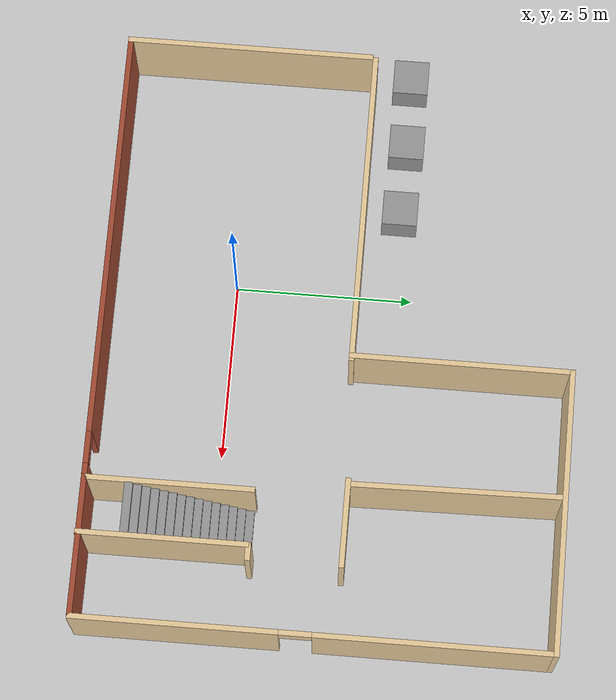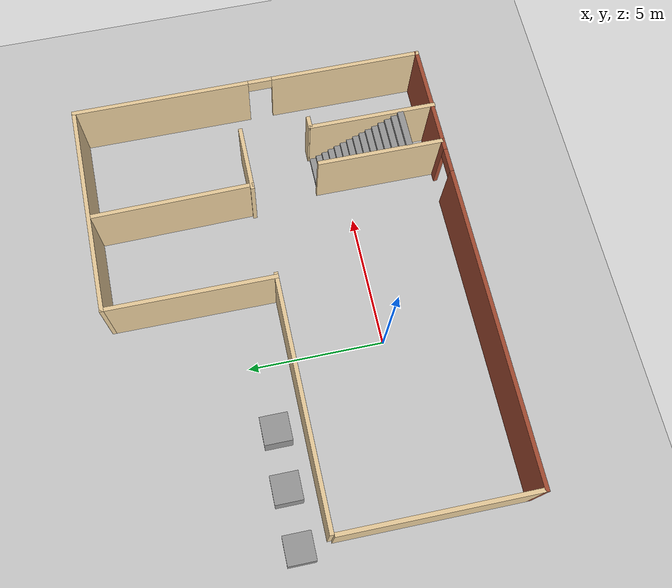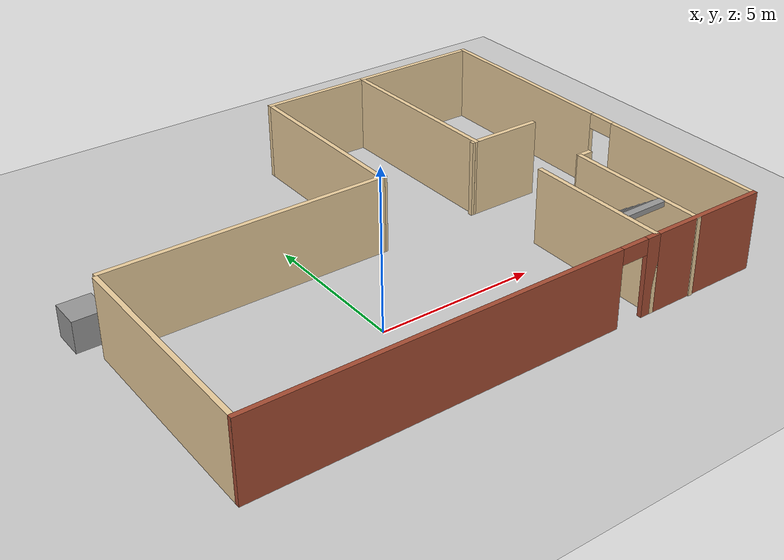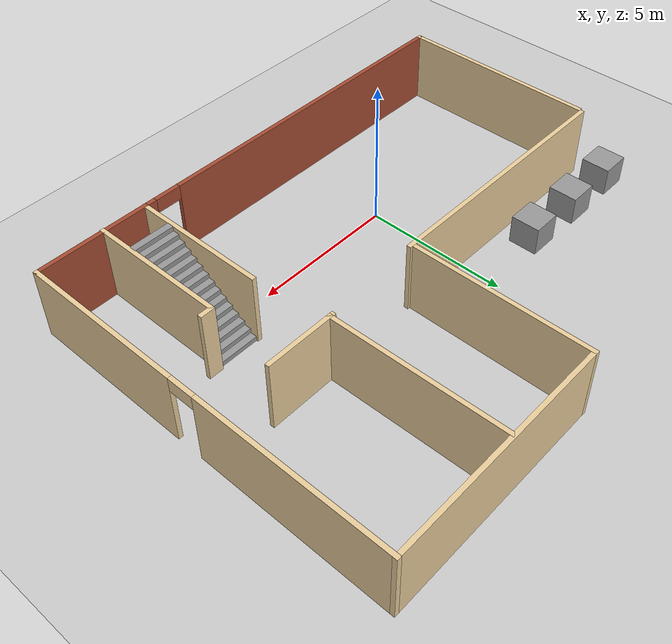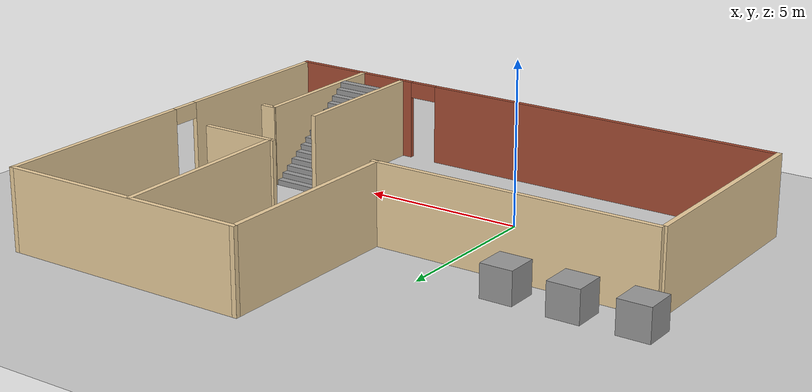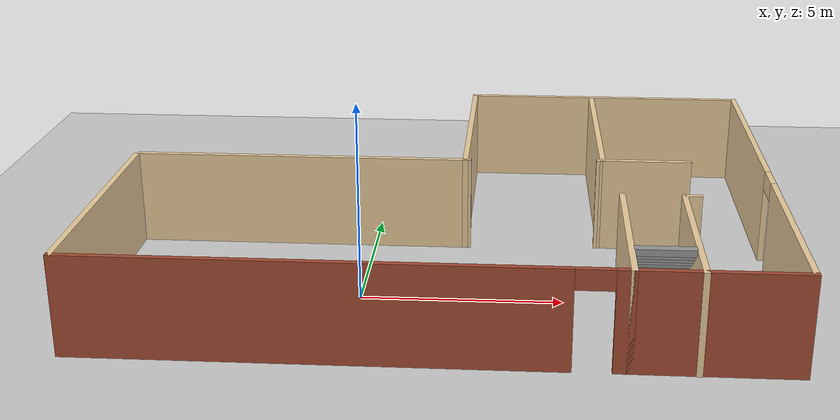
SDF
<sdf version="1.6">
 <world name="default">
  <light name="sun" type="directional">
   <pose>0 0 10 0 -0 0</pose>
   <diffuse>0.8 0.8 0.8 1</diffuse>
   <specular>0.2 0.2 0.2 1</specular>
   <attenuation>
    <range>1000</range>
    <constant>0.9</constant>
    <linear>0.01</linear>
    <quadratic>0.001</quadratic>
   </attenuation>
   <direction>-0.5 0.1 -0.9</direction>
  </light>
  <model name="ground_plane">
   <static>1</static>
   <link name="link">
    <collision name="collision">
     <geometry><plane><normal>0 0 1</normal><size>100 100</size></plane></geometry>
     <surface>
      <contact><collide_bitmask>65535</collide_bitmask></contact>
      <friction><ode><mu>100</mu><mu2>50</mu2></ode></friction>
     </surface>
    </collision>
    <visual name="visual">
     <cast_shadows>0</cast_shadows>
     <geometry><plane><normal>0 0 1</normal><size>100 100</size></plane></geometry>
     <material>
      <script><uri>file://media/materials/scripts/gazebo.material</uri><name>Gazebo/Grey</name></script>
     </material>
    </visual>
   </link>
  </model>
  <gravity>0 0 -9.8</gravity>
  <magnetic_field>6e-06 2.3e-05 -4.2e-05</magnetic_field>
  <atmosphere type="adiabatic"/>
  <physics name="default_physics" default="0" type="ode">
   <max_step_size>0.001</max_step_size>
   <real_time_factor>1</real_time_factor>
   <real_time_update_rate>1000</real_time_update_rate>
  </physics>
  <scene><ambient>0.4 0.4 0.4 1</ambient><background>0.7 0.7 0.7 1</background><shadows>1</shadows></scene>
  <spherical_coordinates>
   <surface_model>EARTH_WGS84</surface_model>
   <latitude_deg>0</latitude_deg>
   <longitude_deg>0</longitude_deg>
   <elevation>0</elevation>
   <heading_deg>0</heading_deg>
  </spherical_coordinates>
  <model name="lounge">
   <pose>1.91507 2.98558 0 0 -0 0</pose>
   <link name="Stairs_0">
    <visual name="Stairs_0_Visual_0">
     <pose>5.26794 -2.03684 0.083333 0 -0 0</pose>
     <geometry><box><size>1.41269 0.233333 0.166667</size></box></geometry>
     <material>
      <script><uri>file://media/materials/scripts/gazebo.material</uri><name>Gazebo/Grey</name></script>
      <ambient>1 1 1 1</ambient>
     </material>
     <meta><layer>0</layer></meta>
    </visual>
    <collision name="Stairs_0_Collision_0">
     <geometry><box><size>1.41269 0.233333 0.166667</size></box></geometry>
     <pose>5.26794 -2.03684 0.083333 0 -0 0</pose>
    </collision>
    <visual name="Stairs_0_Visual_1">
     <pose>5.26794 -2.27017 0.25 0 -0 0</pose>
     <geometry><box><size>1.41269 0.233333 0.166667</size></box></geometry>
     <material>
      <script><uri>file://media/materials/scripts/gazebo.material</uri><name>Gazebo/Grey</name></script>
      <ambient>1 1 1 1</ambient>
     </material>
     <meta><layer>0</layer></meta>
    </visual>
    <collision name="Stairs_0_Collision_1">
     <geometry><box><size>1.41269 0.233333 0.166667</size></box></geometry>
     <pose>5.26794 -2.27017 0.25 0 -0 0</pose>
    </collision>
    <visual name="Stairs_0_Visual_2">
     <pose>5.26794 -2.50351 0.416667 0 -0 0</pose>
     <geometry><box><size>1.41269 0.233333 0.166667</size></box></geometry>
     <material>
      <script><uri>file://media/materials/scripts/gazebo.material</uri><name>Gazebo/Grey</name></script>
      <ambient>1 1 1 1</ambient>
     </material>
     <meta><layer>0</layer></meta>
    </visual>
    <collision name="Stairs_0_Collision_2">
     <geometry><box><size>1.41269 0.233333 0.166667</size></box></geometry>
     <pose>5.26794 -2.50351 0.416667 0 -0 0</pose>
    </collision>
    <visual name="Stairs_0_Visual_3">
     <pose>5.26794 -2.73684 0.583333 0 -0 0</pose>
     <geometry><box><size>1.41269 0.233333 0.166667</size></box></geometry>
     <material>
      <script><uri>file://media/materials/scripts/gazebo.material</uri><name>Gazebo/Grey</name></script>
      <ambient>1 1 1 1</ambient>
     </material>
     <meta><layer>0</layer></meta>
    </visual>
    <collision name="Stairs_0_Collision_3">
     <geometry><box><size>1.41269 0.233333 0.166667</size></box></geometry>
     <pose>5.26794 -2.73684 0.583333 0 -0 0</pose>
    </collision>
    <visual name="Stairs_0_Visual_4">
     <pose>5.26794 -2.97017 0.75 0 -0 0</pose>
     <geometry><box><size>1.41269 0.233333 0.166667</size></box></geometry>
     <material>
      <script><uri>file://media/materials/scripts/gazebo.material</uri><name>Gazebo/Grey</name></script>
      <ambient>1 1 1 1</ambient>
     </material>
     <meta><layer>0</layer></meta>
    </visual>
    <collision name="Stairs_0_Collision_4">
     <geometry><box><size>1.41269 0.233333 0.166667</size></box></geometry>
     <pose>5.26794 -2.97017 0.75 0 -0 0</pose>
    </collision>
    <visual name="Stairs_0_Visual_5">
     <pose>5.26794 -3.2035 0.916667 0 -0 0</pose>
     <geometry><box><size>1.41269 0.233333 0.166667</size></box></geometry>
     <material>
      <script><uri>file://media/materials/scripts/gazebo.material</uri><name>Gazebo/Grey</name></script>
      <ambient>1 1 1 1</ambient>
     </material>
     <meta><layer>0</layer></meta>
    </visual>
    <collision name="Stairs_0_Collision_5">
     <geometry><box><size>1.41269 0.233333 0.166667</size></box></geometry>
     <pose>5.26794 -3.2035 0.916667 0 -0 0</pose>
    </collision>
    <visual name="Stairs_0_Visual_6">
     <pose>5.26794 -3.43684 1.08333 0 -0 0</pose>
     <geometry><box><size>1.41269 0.233333 0.166667</size></box></geometry>
     <material>
      <script><uri>file://media/materials/scripts/gazebo.material</uri><name>Gazebo/Grey</name></script>
      <ambient>1 1 1 1</ambient>
     </material>
     <meta><layer>0</layer></meta>
    </visual>
    <collision name="Stairs_0_Collision_6">
     <geometry><box><size>1.41269 0.233333 0.166667</size></box></geometry>
     <pose>5.26794 -3.43684 1.08333 0 -0 0</pose>
    </collision>
    <visual name="Stairs_0_Visual_7">
     <pose>5.26794 -3.67017 1.25 0 -0 0</pose>
     <geometry><box><size>1.41269 0.233333 0.166667</size></box></geometry>
     <material>
      <script><uri>file://media/materials/scripts/gazebo.material</uri><name>Gazebo/Grey</name></script>
      <ambient>1 1 1 1</ambient>
     </material>
     <meta><layer>0</layer></meta>
    </visual>
    <collision name="Stairs_0_Collision_7">
     <geometry><box><size>1.41269 0.233333 0.166667</size></box></geometry>
     <pose>5.26794 -3.67017 1.25 0 -0 0</pose>
    </collision>
    <visual name="Stairs_0_Visual_8">
     <pose>5.26794 -3.90351 1.41667 0 -0 0</pose>
     <geometry><box><size>1.41269 0.233333 0.166667</size></box></geometry>
     <material>
      <script><uri>file://media/materials/scripts/gazebo.material</uri><name>Gazebo/Grey</name></script>
      <ambient>1 1 1 1</ambient>
     </material>
     <meta><layer>0</layer></meta>
    </visual>
    <collision name="Stairs_0_Collision_8">
     <geometry><box><size>1.41269 0.233333 0.166667</size></box></geometry>
     <pose>5.26794 -3.90351 1.41667 0 -0 0</pose>
    </collision>
    <visual name="Stairs_0_Visual_9">
     <pose>5.26794 -4.13684 1.58333 0 -0 0</pose>
     <geometry><box><size>1.41269 0.233333 0.166667</size></box></geometry>
     <material>
      <script><uri>file://media/materials/scripts/gazebo.material</uri><name>Gazebo/Grey</name></script>
      <ambient>1 1 1 1</ambient>
     </material>
     <meta><layer>0</layer></meta>
    </visual>
    <collision name="Stairs_0_Collision_9">
     <geometry><box><size>1.41269 0.233333 0.166667</size></box></geometry>
     <pose>5.26794 -4.13684 1.58333 0 -0 0</pose>
    </collision>
    <visual name="Stairs_0_Visual_10">
     <pose>5.26794 -4.37017 1.75 0 -0 0</pose>
     <geometry><box><size>1.41269 0.233333 0.166667</size></box></geometry>
     <material>
      <script><uri>file://media/materials/scripts/gazebo.material</uri><name>Gazebo/Grey</name></script>
      <ambient>1 1 1 1</ambient>
     </material>
     <meta><layer>0</layer></meta>
    </visual>
    <collision name="Stairs_0_Collision_10">
     <geometry><box><size>1.41269 0.233333 0.166667</size></box></geometry>
     <pose>5.26794 -4.37017 1.75 0 -0 0</pose>
    </collision>
    <visual name="Stairs_0_Visual_11">
     <pose>5.26794 -4.60351 1.91667 0 -0 0</pose>
     <geometry><box><size>1.41269 0.233333 0.166667</size></box></geometry>
     <material>
      <script><uri>file://media/materials/scripts/gazebo.material</uri><name>Gazebo/Grey</name></script>
      <ambient>1 1 1 1</ambient>
     </material>
     <meta><layer>0</layer></meta>
    </visual>
    <collision name="Stairs_0_Collision_11">
     <geometry><box><size>1.41269 0.233333 0.166667</size></box></geometry>
     <pose>5.26794 -4.60351 1.91667 0 -0 0</pose>
    </collision>
    <visual name="Stairs_0_Visual_12">
     <pose>5.26794 -4.83684 2.08333 0 -0 0</pose>
     <geometry><box><size>1.41269 0.233333 0.166667</size></box></geometry>
     <material>
      <script><uri>file://media/materials/scripts/gazebo.material</uri><name>Gazebo/Grey</name></script>
      <ambient>1 1 1 1</ambient>
     </material>
     <meta><layer>0</layer></meta>
    </visual>
    <collision name="Stairs_0_Collision_12">
     <geometry><box><size>1.41269 0.233333 0.166667</size></box></geometry>
     <pose>5.26794 -4.83684 2.08333 0 -0 0</pose>
    </collision>
    <visual name="Stairs_0_Visual_13">
     <pose>5.26794 -5.07017 2.25 0 -0 0</pose>
     <geometry><box><size>1.41269 0.233333 0.166667</size></box></geometry>
     <material>
      <script><uri>file://media/materials/scripts/gazebo.material</uri><name>Gazebo/Grey</name></script>
      <ambient>1 1 1 1</ambient>
     </material>
     <meta><layer>0</layer></meta>
    </visual>
    <collision name="Stairs_0_Collision_13">
     <geometry><box><size>1.41269 0.233333 0.166667</size></box></geometry>
     <pose>5.26794 -5.07017 2.25 0 -0 0</pose>
    </collision>
    <visual name="Stairs_0_Visual_14">
     <pose>5.26794 -5.30351 2.41667 0 -0 0</pose>
     <geometry><box><size>1.41269 0.233333 0.166667</size></box></geometry>
     <material>
      <script><uri>file://media/materials/scripts/gazebo.material</uri><name>Gazebo/Grey</name></script>
      <ambient>1 1 1 1</ambient>
     </material>
     <meta><layer>0</layer></meta>
    </visual>
    <collision name="Stairs_0_Collision_14">
     <geometry><box><size>1.41269 0.233333 0.166667</size></box></geometry>
     <pose>5.26794 -5.30351 2.41667 0 -0 0</pose>
    </collision>
   </link>
   <link name="Wall_25">
    <collision name="Wall_25_Collision">
     <geometry><box><size>7 0.15 2.5</size></box></geometry>
     <pose>0 0 1.25 0 -0 0</pose>
    </collision>
    <visual name="Wall_25_Visual">
     <pose>0 0 1.25 0 -0 0</pose>
     <geometry><box><size>7 0.15 2.5</size></box></geometry>
     <material>
      <script><uri>file://media/materials/scripts/gazebo.material</uri><name>Gazebo/Grey</name></script>
      <ambient>0.921569 0.807843 0.615686 1</ambient>
     </material>
     <meta><layer>0</layer></meta>
    </visual>
    <pose>-8.35 -3.11051 0 0 0 -1.5708</pose>
   </link>
   <link name="Wall_27">
    <pose>-1.925 -6.53552 0 0 -0 0</pose>
    <visual name="Wall_27_Visual_0">
     <pose>-0.677313 0 1.25 0 -0 0</pose>
     <geometry><box><size>11.6454 0.15 2.5</size></box></geometry>
     <material>
      <script><uri>file://media/materials/scripts/gazebo.material</uri><name>Gazebo/Bricks</name></script>
      <ambient>1 1 1 1</ambient>
     </material>
     <meta><layer>0</layer></meta>
    </visual>
    <collision name="Wall_27_Collision_0">
     <geometry><box><size>11.6454 0.15 2.5</size></box></geometry>
     <pose>-0.677313 0 1.25 0 -0 0</pose>
    </collision>
    <visual name="Wall_27_Visual_1">
     <pose>6.27269 0 1.25 0 -0 0</pose>
     <geometry><box><size>0.454627 0.15 2.5</size></box></geometry>
     <material>
      <script><uri>file://media/materials/scripts/gazebo.material</uri><name>Gazebo/Bricks</name></script>
      <ambient>1 1 1 1</ambient>
     </material>
     <meta><layer>0</layer></meta>
    </visual>
    <collision name="Wall_27_Collision_1">
     <geometry><box><size>0.454627 0.15 2.5</size></box></geometry>
     <pose>6.27269 0 1.25 0 -0 0</pose>
    </collision>
    <visual name="Wall_27_Visual_2">
     <pose>5.59537 0 2.25 0 -0 0</pose>
     <geometry><box><size>0.9 0.15 0.5</size></box></geometry>
     <material>
      <script><uri>file://media/materials/scripts/gazebo.material</uri><name>Gazebo/Bricks</name></script>
      <ambient>1 1 1 1</ambient>
     </material>
     <meta><layer>0</layer></meta>
    </visual>
    <collision name="Wall_27_Collision_2">
     <geometry><box><size>0.9 0.15 0.5</size></box></geometry>
     <pose>5.59537 0 2.25 0 -0 0</pose>
    </collision>
   </link>
   <link name="Wall_28">
    <collision name="Wall_28_Collision">
     <geometry><box><size>4.75 0.15 2.5</size></box></geometry>
     <pose>0 0 1.25 0 -0 0</pose>
    </collision>
    <visual name="Wall_28_Visual">
     <pose>0 0 1.25 0 -0 0</pose>
     <geometry><box><size>4.75 0.15 2.5</size></box></geometry>
     <material>
      <script><uri>file://media/materials/scripts/gazebo.material</uri><name>Gazebo/Grey</name></script>
      <ambient>0.921569 0.807843 0.615686 1</ambient>
     </material>
     <meta><layer>0</layer></meta>
    </visual>
    <pose>4.5 -4.23552 0 0 -0 1.5708</pose>
   </link>
   <link name="Wall_30">
    <collision name="Wall_30_Collision">
     <geometry><box><size>4 0.15 2.5</size></box></geometry>
     <pose>0 0 1.25 0 -0 0</pose>
    </collision>
    <visual name="Wall_30_Visual">
     <pose>0 0 1.25 0 -0 0</pose>
     <geometry><box><size>4 0.15 2.5</size></box></geometry>
     <material>
      <script><uri>file://media/materials/scripts/gazebo.material</uri><name>Gazebo/Bricks</name></script>
      <ambient>1 1 1 1</ambient>
     </material>
     <meta><layer>0</layer></meta>
    </visual>
    <pose>6.425 -6.53552 0 0 -0 0</pose>
   </link>
   <link name="Wall_31">
    <pose>8.35 0.014485 0 0 -0 1.5708</pose>
    <visual name="Wall_31_Visual_0">
     <pose>-3.77058 0 1.25 0 -0 0</pose>
     <geometry><box><size>5.70883 0.15 2.5</size></box></geometry>
     <material>
      <script><uri>file://media/materials/scripts/gazebo.material</uri><name>Gazebo/Grey</name></script>
      <ambient>0.921569 0.807843 0.615686 1</ambient>
     </material>
     <meta><layer>0</layer></meta>
    </visual>
    <collision name="Wall_31_Collision_0">
     <geometry><box><size>5.70883 0.15 2.5</size></box></geometry>
     <pose>-3.77058 0 1.25 0 -0 0</pose>
    </collision>
    <visual name="Wall_31_Visual_1">
     <pose>3.30442 0 1.25 0 -0 0</pose>
     <geometry><box><size>6.64117 0.15 2.5</size></box></geometry>
     <material>
      <script><uri>file://media/materials/scripts/gazebo.material</uri><name>Gazebo/Grey</name></script>
      <ambient>0.921569 0.807843 0.615686 1</ambient>
     </material>
     <meta><layer>0</layer></meta>
    </visual>
    <collision name="Wall_31_Collision_1">
     <geometry><box><size>6.64117 0.15 2.5</size></box></geometry>
     <pose>3.30442 0 1.25 0 -0 0</pose>
    </collision>
    <visual name="Wall_31_Visual_2">
     <pose>-0.466169 0 2.25 0 -0 0</pose>
     <geometry><box><size>0.9 0.15 0.5</size></box></geometry>
     <material>
      <script><uri>file://media/materials/scripts/gazebo.material</uri><name>Gazebo/Grey</name></script>
      <ambient>0.921569 0.807843 0.615686 1</ambient>
     </material>
     <meta><layer>0</layer></meta>
    </visual>
    <collision name="Wall_31_Collision_2">
     <geometry><box><size>0.9 0.15 0.5</size></box></geometry>
     <pose>-0.466169 0 2.25 0 -0 0</pose>
    </collision>
   </link>
   <link name="Wall_32">
    <collision name="Wall_32_Collision">
     <geometry><box><size>8 0.15 2.5</size></box></geometry>
     <pose>0 0 1.25 0 -0 0</pose>
    </collision>
    <visual name="Wall_32_Visual">
     <pose>0 0 1.25 0 -0 0</pose>
     <geometry><box><size>8 0.15 2.5</size></box></geometry>
     <material>
      <script><uri>file://media/materials/scripts/gazebo.material</uri><name>Gazebo/Grey</name></script>
      <ambient>0.921569 0.807843 0.615686 1</ambient>
     </material>
     <meta><layer>0</layer></meta>
    </visual>
    <pose>4.425 6.56449 0 0 -0 3.14159</pose>
   </link>
   <link name="Wall_33">
    <collision name="Wall_33_Collision">
     <geometry><box><size>6.25052 0.15 2.5</size></box></geometry>
     <pose>0 0 1.25 0 -0 0</pose>
    </collision>
    <visual name="Wall_33_Visual">
     <pose>0 0 1.25 0 -0 0</pose>
     <geometry><box><size>6.25052 0.15 2.5</size></box></geometry>
     <material>
      <script><uri>file://media/materials/scripts/gazebo.material</uri><name>Gazebo/Grey</name></script>
      <ambient>0.921569 0.807843 0.615686 1</ambient>
     </material>
     <meta><layer>0</layer></meta>
    </visual>
    <pose>0.5 3.51449 0 0 0 -1.5708</pose>
   </link>
   <link name="Wall_34">
    <collision name="Wall_34_Collision">
     <geometry><box><size>9 0.15 2.5</size></box></geometry>
     <pose>0 0 1.25 0 -0 0</pose>
    </collision>
    <visual name="Wall_34_Visual">
     <pose>0 0 1.25 0 -0 0</pose>
     <geometry><box><size>9 0.15 2.5</size></box></geometry>
     <material>
      <script><uri>file://media/materials/scripts/gazebo.material</uri><name>Gazebo/Grey</name></script>
      <ambient>0.921569 0.807843 0.615686 1</ambient>
     </material>
     <meta><layer>0</layer></meta>
    </visual>
    <pose>-3.845 0.464485 0 0 -0 3.14159</pose>
   </link>
   <link name="Wall_36">
    <collision name="Wall_36_Collision">
     <geometry><box><size>6.02472 0.15 2.5</size></box></geometry>
     <pose>0 0 1.25 0 -0 0</pose>
    </collision>
    <visual name="Wall_36_Visual">
     <pose>0 0 1.25 0 -0 0</pose>
     <geometry><box><size>6.02472 0.15 2.5</size></box></geometry>
     <material>
      <script><uri>file://media/materials/scripts/gazebo.material</uri><name>Gazebo/Grey</name></script>
      <ambient>0.921569 0.807843 0.615686 1</ambient>
     </material>
     <meta><layer>0</layer></meta>
    </visual>
    <pose>4.08753 3.58036 0 0 0 -1.55513</pose>
   </link>
   <link name="Wall_37">
    <collision name="Wall_37_Collision">
     <geometry><box><size>2.5 0.15 2.5</size></box></geometry>
     <pose>0 0 1.25 0 -0 0</pose>
    </collision>
    <visual name="Wall_37_Visual">
     <pose>0 0 1.25 0 -0 0</pose>
     <geometry><box><size>2.5 0.15 2.5</size></box></geometry>
     <material>
      <script><uri>file://media/materials/scripts/gazebo.material</uri><name>Gazebo/Grey</name></script>
      <ambient>0.921569 0.807843 0.615686 1</ambient>
     </material>
     <meta><layer>0</layer></meta>
    </visual>
    <pose>5.21653 0.643356 0 0 -0 0</pose>
   </link>
   <link name="Wall_39">
    <collision name="Wall_39_Collision">
     <geometry><box><size>4.75 0.15 2.5</size></box></geometry>
     <pose>0 0 1.25 0 -0 0</pose>
    </collision>
    <visual name="Wall_39_Visual">
     <pose>0 0 1.25 0 -0 0</pose>
     <geometry><box><size>4.75 0.15 2.5</size></box></geometry>
     <material>
      <script><uri>file://media/materials/scripts/gazebo.material</uri><name>Gazebo/Grey</name></script>
      <ambient>0.921569 0.807843 0.615686 1</ambient>
     </material>
     <meta><layer>0</layer></meta>
    </visual>
    <pose>6.03095 -4.26475 0 0 0 -1.5708</pose>
   </link>
   <link name="Wall_41">
    <collision name="Wall_41_Collision">
     <geometry><box><size>0.5 0.15 2.5</size></box></geometry>
     <pose>0 0 1.25 0 -0 0</pose>
    </collision>
    <visual name="Wall_41_Visual">
     <pose>0 0 1.25 0 -0 0</pose>
     <geometry><box><size>0.5 0.15 2.5</size></box></geometry>
     <material>
      <script><uri>file://media/materials/scripts/gazebo.material</uri><name>Gazebo/Grey</name></script>
      <ambient>0.921569 0.807843 0.615686 1</ambient>
     </material>
     <meta><layer>0</layer></meta>
    </visual>
    <pose>6.21776 -1.90848 0 0 -0 0</pose>
   </link>
   <static>1</static>
  </model>
  <audio><device>default</device></audio>
  <model name="unit_box_0">
   <pose>-6.50953 4.49904 0.5 -0 -0 -0</pose>
   <link name="link">
    <inertial>
     <mass>1</mass>
     <inertia>
      <ixx>0.166667</ixx>
      <ixy>0</ixy>
      <ixz>0</ixz>
      <iyy>0.166667</iyy>
      <iyz>0</iyz>
      <izz>0.166667</izz>
     </inertia>
    </inertial>
    <collision name="collision"><geometry><box><size>1 1 1</size></box></geometry></collision>
    <visual name="visual">
     <geometry><box><size>1 1 1</size></box></geometry>
     <material>
      <script><name>Gazebo/Grey</name><uri>file://media/materials/scripts/gazebo.material</uri></script>
     </material>
    </visual>
   </link>
  </model>
  <model name="unit_box_1">
   <pose>-4.51109 4.52107 0.499995 1e-05 -0 0</pose>
   <link name="link">
    <inertial>
     <mass>1</mass>
     <inertia>
      <ixx>0.166667</ixx>
      <ixy>0</ixy>
      <ixz>0</ixz>
      <iyy>0.166667</iyy>
      <iyz>0</iyz>
      <izz>0.166667</izz>
     </inertia>
    </inertial>
    <collision name="collision"><geometry><box><size>1 1 1</size></box></geometry></collision>
    <visual name="visual">
     <geometry><box><size>1 1 1</size></box></geometry>
     <material>
      <script><name>Gazebo/Grey</name><uri>file://media/materials/scripts/gazebo.material</uri></script>
     </material>
    </visual>
   </link>
  </model>
  <model name="unit_box_2">
   <link name="link">
    <inertial>
     <mass>1</mass>
     <inertia>
      <ixx>0.166667</ixx>
      <ixy>0</ixy>
      <ixz>0</ixz>
      <iyy>0.166667</iyy>
      <iyz>0</iyz>
      <izz>0.166667</izz>
     </inertia>
    </inertial>
    <visual name="visual">
     <geometry><box><size>1 1 1</size></box></geometry>
     <material>
      <script><name>Gazebo/Grey</name><uri>file://media/materials/scripts/gazebo.material</uri></script>
     </material>
    </visual>
    <collision name="collision">
     <geometry><box><size>1 1 1</size></box></geometry>
     <surface>
      <friction>
       <ode><mu>1</mu><mu2>1</mu2><fdir1>0 0 0</fdir1><slip1>0</slip1><slip2>0</slip2></ode>
       <torsional>
        <coefficient>1</coefficient>
        <patch_radius>0</patch_radius>
        <surface_radius>0</surface_radius>
        <use_patch_radius>1</use_patch_radius>
        <ode><slip>0</slip></ode>
       </torsional>
      </friction>
      <bounce><restitution_coefficient>0</restitution_coefficient><threshold>1e+06</threshold></bounce>
      <contact>
       <collide_without_contact>0</collide_without_contact>
       <collide_without_contact_bitmask>1</collide_without_contact_bitmask>
       <collide_bitmask>1</collide_bitmask>
       <ode>
        <soft_cfm>0</soft_cfm>
        <soft_erp>0.2</soft_erp>
        <kp>1e+13</kp>
        <kd>1</kd>
        <max_vel>0.01</max_vel>
        <min_depth>0</min_depth>
       </ode>
       <bullet>
        <split_impulse>1</split_impulse>
        <split_impulse_penetration_threshold>-0.01</split_impulse_penetration_threshold>
        <soft_cfm>0</soft_cfm>
        <soft_erp>0.2</soft_erp>
        <kp>1e+13</kp>
        <kd>1</kd>
       </bullet>
      </contact>
     </surface>
    </collision>
   </link>
   <static>0</static>
   <pose>-2.48492 4.47756 0.5 0 -0 0</pose>
  </model>
 </world>
</sdf>
